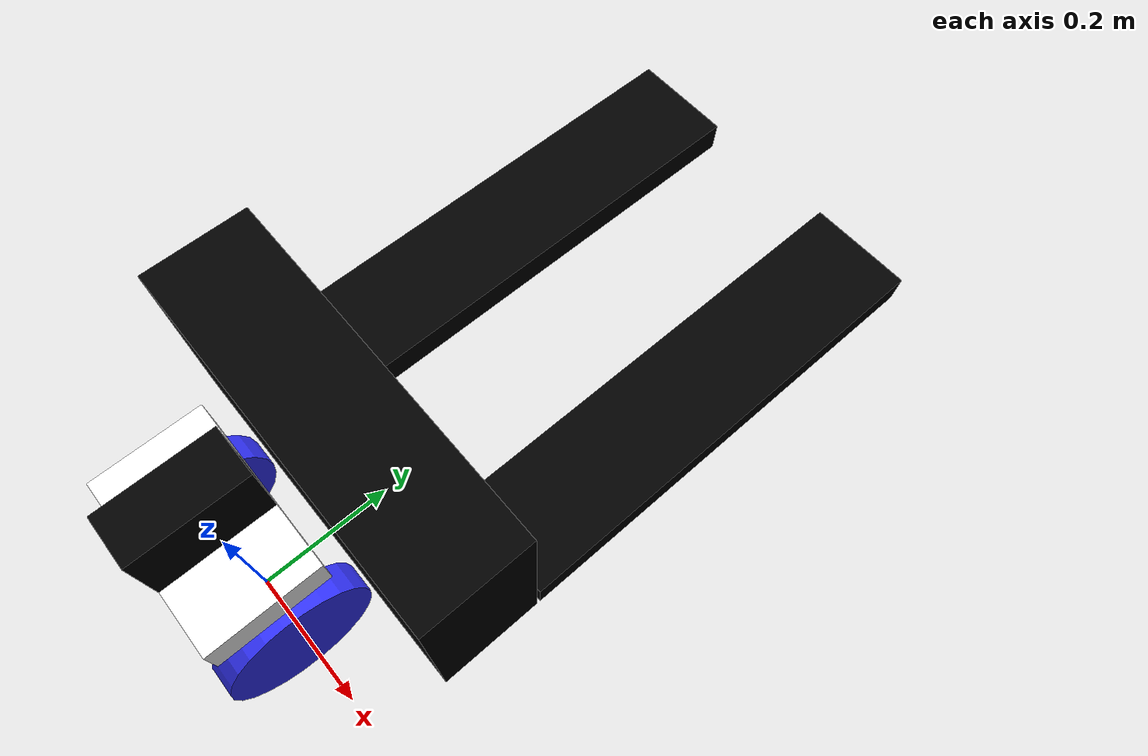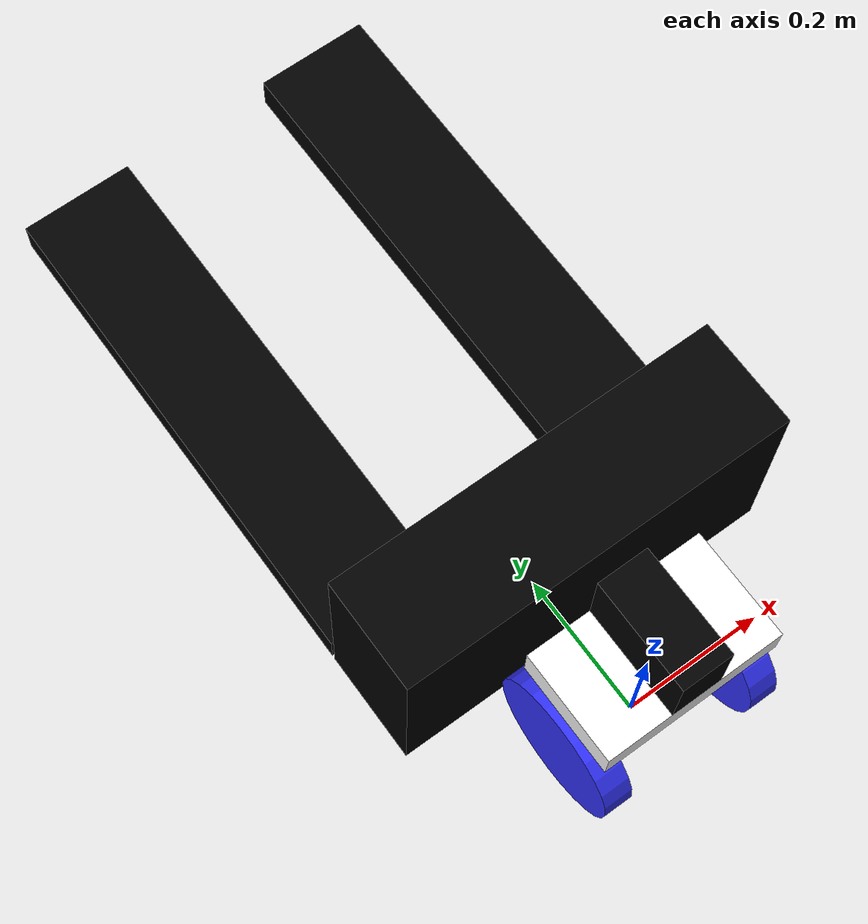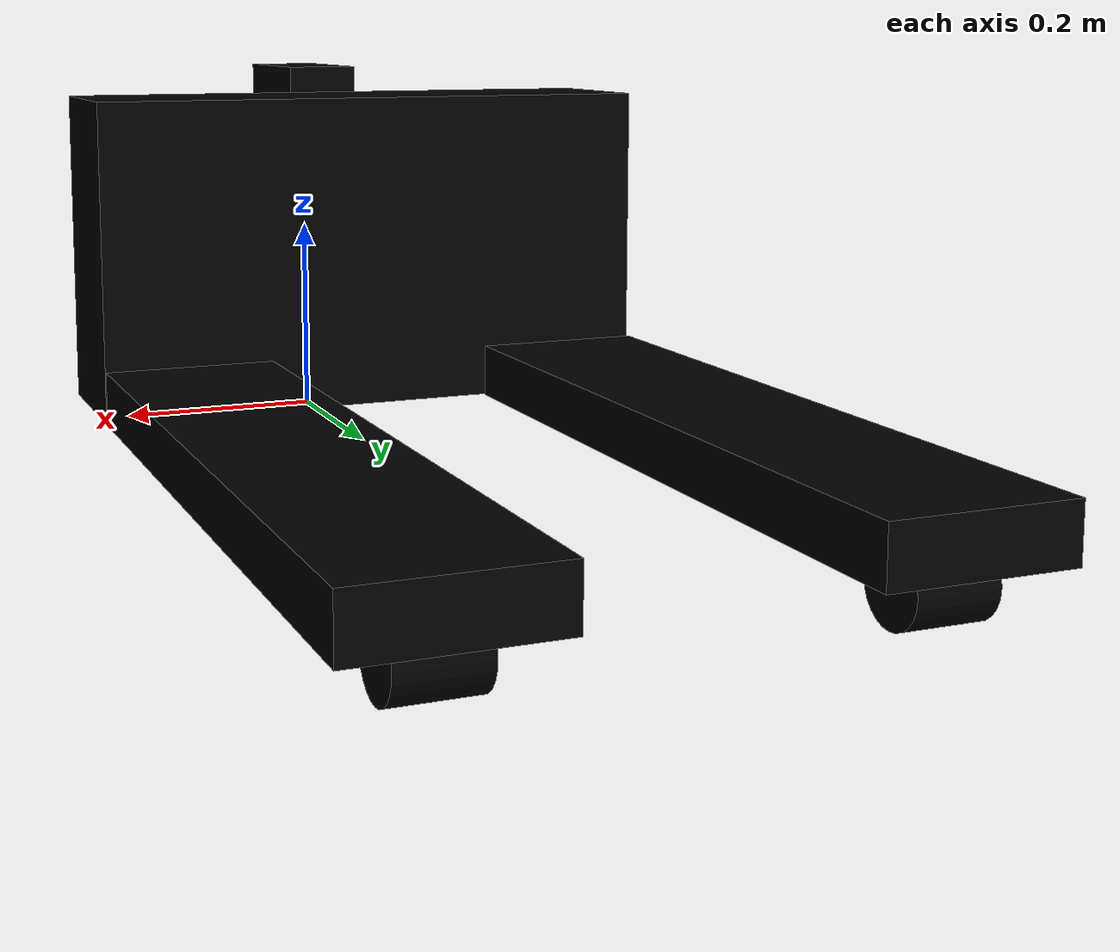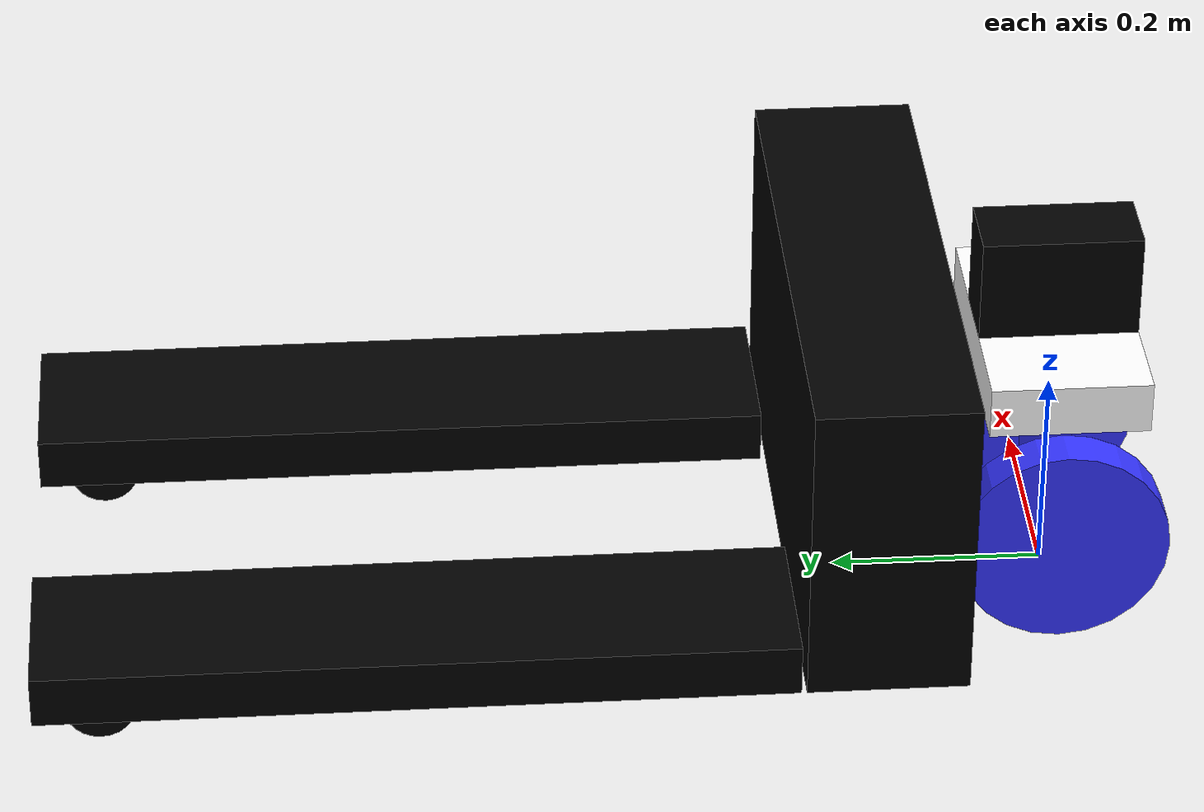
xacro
<?xml version="1.0"?>
<robot xmlns:xacro="http://www.ros.org/wiki/xacro" >

    <xacro:include filename="inertial_macros.xacro"/>

    <material name="white">
        <color rgba="1 1 1 1" />
    </material>

    <material name="orange">
        <color rgba="1 0.3 0.1 1"/>
    </material>

    <material name="blue">
        <color rgba="0.2 0.2 1 1"/>
    </material>

    <material name="black">
        <color rgba="0 0 0 1"/>
    </material>

    <!-- BASE LINK -->

    <link name="base_link">

    </link>

    <!-- BASE_FOOTPRINT LINK -->

    <joint name="base_footprint_joint" type="fixed">
        <parent link="base_link"/>
        <child link="base_footprint"/>
        <origin xyz="0 0 0" rpy="0 0 0"/>
    </joint>

    <link name="base_footprint">
    </link>

    <!-- CHASSIS LINK -->

    <joint name="base_plate_joint" type="fixed">
        <parent link="base_link"/>
        <child link="base_plate"/>
        <origin xyz="0 0 0.25"/>
    </joint>

    <link name="base_plate">
        <visual>
            <origin xyz="0 0 0"/>
            <geometry>
                <box size="0.25 0.15 0.05"/>
            </geometry>
            <material name="white"/>
        </visual>
        <collision>
            <origin xyz="0 0 0"/>
            <geometry>
                <box size="0.25 0.15 0.05"/>
            </geometry>
        </collision>
        <xacro:inertial_box mass="2" x="0.25" y="0.15" z="0.05">
            <origin xyz="0 0 0" rpy="0 0 0"/>
        </xacro:inertial_box>
    </link>

    <!-- STEERING SHAFT LINK -->

    <joint name="steering_shaft_joint" type="revolute">
        <parent link="base_plate"/>
        <child link="steering_shaft"/>
        <origin xyz="0 0 -0.025" rpy="0 0 0" />
        <axis xyz="0 0 1"/>
        <dynamics damping="1.1" friction="0.5"/>
        <limit lower="${-pi/2}" upper="${pi/2}" effort="1000" velocity="${2*pi}"/>
    </joint>

    <link name="steering_shaft">
        <visual>
            <origin xyz="0 0 -0.0625"/>
            <geometry>
                <cylinder radius="0.025" length="0.125"/>
            </geometry>
            <material name="blue"/>
        </visual>
        <xacro:inertial_cylinder mass="0.5" length="0.125" radius="0.025">
            <origin xyz="0 0 0" rpy="0 0 0"/>
        </xacro:inertial_cylinder>
    </link>
    <!-- STEERING WHEEL LEFT LINK -->

    <joint name="steering_wheel_right_joint" type="continuous">
    <parent link="steering_shaft"/>
    <child link="steering_wheel_right"/>
    <origin xyz="-0.11 0 -0.125" rpy="0 ${pi/2} 0" />
        <axis xyz="0 0 1"/>
        <dynamics damping="0.01" friction="0.01"/>

    </joint>

    <link name="steering_wheel_right">
        <visual>
            <geometry>
                <cylinder radius="0.1" length="0.04"/>
            </geometry>
            <material name="blue"/>
        </visual>
        <collision>
            <geometry>
                <cylinder radius="0.1" length="0.04"/>
            </geometry>
        </collision>

        <xacro:inertial_cylinder mass="1.5" length="0.04" radius="0.1">
            <origin xyz="0 0 0" rpy="0 0 0"/>
        </xacro:inertial_cylinder>
    </link>

    <joint name="steering_wheel_left_joint" type="continuous">
    <parent link="steering_shaft"/>
    <child link="steering_wheel_left"/>
    <origin xyz="0.11 0 -0.125" rpy="0 ${pi/2} 0" />
        <axis xyz="0 0 1"/>
        <dynamics damping="0.01" friction="0.01"/>

    </joint>

    <link name="steering_wheel_left">
        <visual>
            <geometry>
                <cylinder radius="0.1" length="0.04"/>
            </geometry>
            <material name="blue"/>
        </visual>
        <collision>
            <geometry>
                <cylinder radius="0.1" length="0.04"/>
            </geometry>
        </collision>

        <xacro:inertial_cylinder mass="1.5" length="0.04" radius="0.1">
            <origin xyz="0 0 0" rpy="0 0 0"/>
        </xacro:inertial_cylinder>
    </link>

    <!-- LINEAR ACTUATOR LINK -->

    <joint name="linear_actuator_joint" type="prismatic">
        <parent link="base_plate"/>
        <child link="linear_actuator"/>
        <origin xyz="0 0 0.025"/>
        <axis xyz="0 0 1"/>
        <limit lower="0.0" upper="0.12" effort="100.0" velocity="0.1"/>
        <dynamics damping="0.01" friction="0.01"/>

    </joint>

    <link name="linear_actuator">
        <visual>
            <origin xyz="0 0 0.05"/>
            <geometry>
                <box size="0.07 0.15 0.1"/>
            </geometry>
            <material name="black"/>
        </visual>
        <collision>
            <origin xyz="0 0 0.05"/>
            <geometry>
                <box size="0.07 0.15 0.1"/>
            </geometry>
        </collision>
        <xacro:inertial_box mass="2" x="0.07" y="0.15" z="0.1">
            <origin xyz="0 0 0.05" rpy="0 0 0"/>
        </xacro:inertial_box>
    </link>

    <!-- FRAME BOX LINK -->

    <joint name="frame_box_joint" type="fixed">
        <parent link="linear_actuator"/>
        <child link="frame_box"/>
        <origin xyz="0 0.18 -0.075" rpy="0 0 0"/>
        <dynamics damping="1.0" friction="1.0"/>

    </joint>

    <link name="frame_box">
        <visual>
            <geometry>
                <box size="0.54 0.15 0.3"/>
            </geometry>
            <material name="black"/>
        </visual>
        <collision>
            <geometry>
                <box size="0.54 0.15 0.3"/>
            </geometry>
        </collision>
        <xacro:inertial_box mass="20" x="0.54" y="0.15" z="0.3">
            <origin xyz="0 0 0" rpy="0 0 0"/>
        </xacro:inertial_box>
    </link>

     <!-- LEFT FORK LINK -->

    <joint name="left_fork_joint" type="fixed">
        <parent link="frame_box"/>
        <child link="left_fork"/>
        <origin xyz="-0.19 0.08 -0.125" rpy="0 0 0"/>

    </joint>

    <link name="left_fork">
        <visual>
            <origin xyz="0 0.350 0"/>
            <geometry>
                <box size="0.16 0.7 0.05"/>
            </geometry>
            <material name="black"/>
        </visual>
        <collision>
            <origin xyz="0 0.350 0"/>
            <geometry>
                <box size="0.16 0.7 0.05"/>
            </geometry>
        </collision>
        <xacro:inertial_box mass="10" x="0.16" y="0.7" z="0.05">
            <origin xyz="0 0.350 0" rpy="0 0 0"/>
        </xacro:inertial_box>
    </link>

    <!-- RIGHT FORK LINK -->

    <joint name="right_fork_joint" type="fixed">
        <parent link="frame_box"/>
        <child link="right_fork"/>
        <origin xyz="0.19 0.08 -0.125" rpy="0 0 0"/>

    </joint>

    <link name="right_fork">
        <visual>
            <origin xyz="0 0.350 0"/>
            <geometry>
                <box size="0.16 0.7 0.05"/>
            </geometry>
            <material name="black"/>
        </visual>
        <collision>
            <origin xyz="0 0.350 0"/>
            <geometry>
                <box size="0.16 0.7 0.05"/>
            </geometry>
        </collision>
        <xacro:inertial_box mass="10" x="0.16" y="0.7" z="0.05">
            <origin xyz="0 0.350 0" rpy="0 0 0"/>
        </xacro:inertial_box>
    </link>

    <!-- FORK WHEEL LEFT LINK -->

    <joint name="fork_wheel_left_joint" type="continuous">
        <parent link="base_plate"/>
        <child link="fork_wheel_left"/>
        <origin xyz="-0.19 0.9 -0.2175" rpy="0 ${pi/2} 0" />
        <axis xyz="0 0 1"/>
        <dynamics damping="0.1" friction="0.1"/>
    </joint>

    <link name="fork_wheel_left">
        <visual>
            <geometry>
                <cylinder radius="0.0325" length="0.07"/>
            </geometry>
            <material name="black"/>
        </visual>
        <collision>
            <geometry>
                <cylinder radius="0.0325" length="0.07"/>
            </geometry>
        </collision>

        <xacro:inertial_cylinder mass="0.3" length="0.07" radius="0.0325">
            <origin xyz="0 0 0" rpy="0 0 0"/>
        </xacro:inertial_cylinder>
    </link>

    <!--896 mm i y till yttersta forkwheel, diameter på fork wheels 65 mm, bredd-->
    <!-- FORK WHEEL RIGHT LINK -->

    <joint name="fork_wheel_right_joint" type="continuous">
        <parent link="base_plate"/>
        <child link="fork_wheel_right"/>
        <origin xyz="0.19 0.9 -0.2175" rpy="0 ${pi/2} 0" />
        <axis xyz="0 0 1"/>
        <dynamics damping="0.1" friction="0.1"/>
    </joint>

    <link name="fork_wheel_right">
        <visual>
            <geometry>
                <cylinder radius="0.0325" length="0.07"/>
            </geometry>
            <material name="black"/>
        </visual>
        <collision>
            <geometry>
                <cylinder radius="0.0325" length="0.07"/>
            </geometry>

        </collision>

        <xacro:inertial_cylinder mass="0.3" length="0.07" radius="0.0325">
            <origin xyz="0 0 0" rpy="0 0 0"/>
        </xacro:inertial_cylinder>
    </link>

    <gazebo reference="steering_wheel_right">
        <material>Gazebo/Black</material>
        <mu1 value="0.9"/>
        <mu2 value="0.9"/>
    </gazebo>

    <gazebo reference="steering_wheel_left">
        <material>Gazebo/Black</material>
        <mu1 value="0.9"/>
        <mu2 value="0.9"/>
    </gazebo>

    <gazebo reference="fork_wheel_left">
        <material>Gazebo/Blue</material>
        <mu1 value="0.9"/>
        <mu2 value="1.0"/>
    </gazebo>

     <gazebo reference="fork_wheel_right">
        <material>Gazebo/Blue</material>
        <mu1 value="0.9"/>
        <mu2 value="1.0"/>
    </gazebo>
    <gazebo reference="linear_actuator_joint">
        <kp value="1000000.0"/>
        <kd value="1000000.0"/>
    </gazebo>

    <gazebo reference="frame_box">
        <material>Gazebo/Red</material>
    </gazebo>
    <!-- TRANSMISSIONS FOR ROS CONTROL -->

    <!-- Transmission for linear actuator -->
    <transmission name="linear_actuator_transmission">
        <type>transmission_interface/SimpleTransmission</type>
        <joint name="linear_actuator_joint">
            <hardwareInterface>hardware_interface/EffortJointInterface</hardwareInterface>
        </joint>
        <actuator name="linear_actuator_motor">
            <hardwareInterface>hardware_interface/EffortJointInterface</hardwareInterface>
            <mechanicalReduction>1</mechanicalReduction>
        </actuator>
    </transmission>

    <!-- STEERING SHAFT -->

     <!-- STEERING WHEEL-->

      <!-- Rear WHeels -->

</robot>
